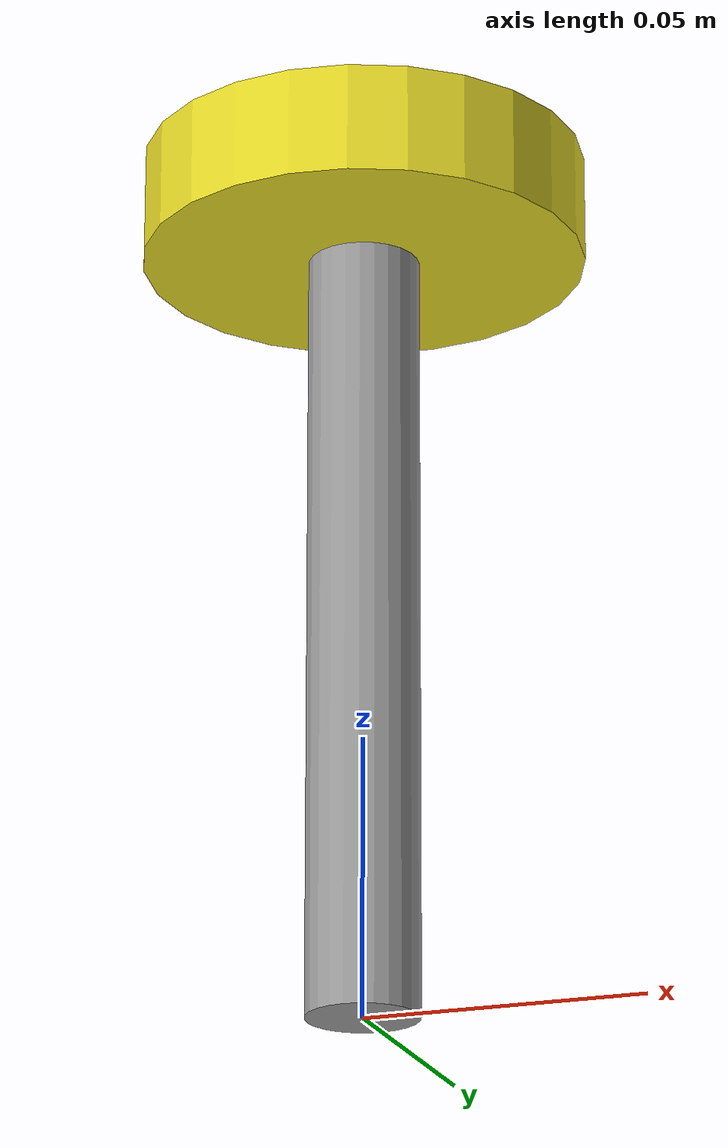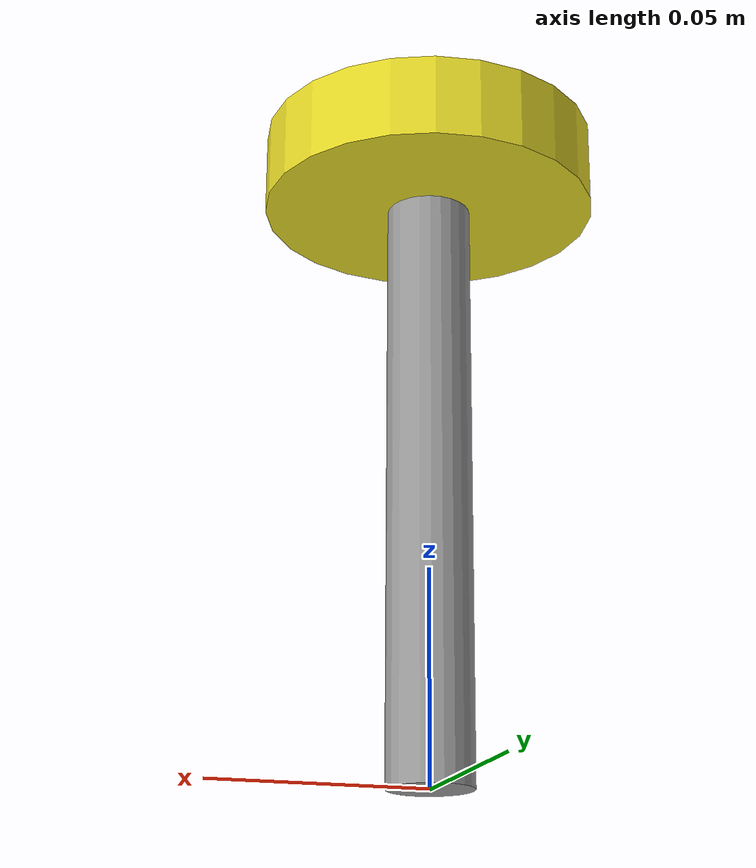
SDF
<?xml version='1.0'?>
<sdf version='1.6'>
  <model name='edge_pillar'>
    <static>true</static>
    <link name='link_0'>
      <pose frame=''>0 0 0.07 0 -0 0</pose>
      <inertial>
        <mass>1</mass>
        <inertia>
          <ixx>0.145833</ixx>
          <ixy>0</ixy>
          <ixz>0</ixz>
          <iyy>0.145833</iyy>
          <iyz>0</iyz>
          <izz>0.125</izz>
        </inertia>
        <pose frame=''>0 0 0 0 -0 0</pose>
      </inertial>
      <gravity>1</gravity>
      <self_collide>0</self_collide>
      <kinematic>0</kinematic>
      <visual name='visual'>
        <pose frame=''>0 0 0 0 -0 0</pose>
        <geometry>
          <cylinder>
            <radius>0.01</radius>
            <length>0.14</length>
          </cylinder>
        </geometry>
        <material>
          <lighting>1</lighting>
          <script>
            <uri>file://media/materials/scripts/gazebo.material</uri>
            <name>Gazebo/Grey</name>
          </script>

          <shader type='vertex'>
            <normal_map>__default__</normal_map>
          </shader>
        </material>
        <cast_shadows>0</cast_shadows>
        <transparency>0</transparency>
      </visual>
      <collision name='collision'>
        <laser_retro>0</laser_retro>
        <max_contacts>10</max_contacts>
        <pose frame=''>0 0 0 0 -0 0</pose>
        <geometry>
          <cylinder>
            <radius>0.01</radius>
            <length>0.14</length>
          </cylinder>
        </geometry>
        <surface>
          <friction>
            <ode>
              <mu>1</mu>
              <mu2>1</mu2>
              <fdir1>0 0 0</fdir1>
              <slip1>0</slip1>
              <slip2>0</slip2>
            </ode>
            <torsional>
              <coefficient>1</coefficient>
              <patch_radius>0</patch_radius>
              <surface_radius>0</surface_radius>
              <use_patch_radius>1</use_patch_radius>
              <ode>
                <slip>0</slip>
              </ode>
            </torsional>
          </friction>
          <bounce>
            <restitution_coefficient>0</restitution_coefficient>
            <threshold>1e+06</threshold>
          </bounce>
          <contact>
            <collide_without_contact>0</collide_without_contact>
            <collide_without_contact_bitmask>1</collide_without_contact_bitmask>
            <collide_bitmask>1</collide_bitmask>
            <ode>
              <soft_cfm>0</soft_cfm>
              <soft_erp>0.2</soft_erp>
              <kp>1e+13</kp>
              <kd>1</kd>
              <max_vel>0.01</max_vel>
              <min_depth>0</min_depth>
            </ode>
            <bullet>
              <split_impulse>1</split_impulse>
              <split_impulse_penetration_threshold>-0.01</split_impulse_penetration_threshold>
              <soft_cfm>0</soft_cfm>
              <soft_erp>0.2</soft_erp>
              <kp>1e+13</kp>
              <kd>1</kd>
            </bullet>
          </contact>
        </surface>
      </collision>
    </link>
    <link name='link_1'>
      <pose frame=''>0 0 0.15 0 -0 0</pose>
      <inertial>
        <mass>1</mass>
        <inertia>
          <ixx>0.145833</ixx>
          <ixy>0</ixy>
          <ixz>0</ixz>
          <iyy>0.145833</iyy>
          <iyz>0</iyz>
          <izz>0.125</izz>
        </inertia>
        <pose frame=''>0 0 0 0 -0 0</pose>
      </inertial>
      <gravity>1</gravity>
      <self_collide>0</self_collide>
      <kinematic>0</kinematic>
      <visual name='visual'>
        <pose frame=''>0 0 0 0 -0 0</pose>
        <geometry>
          <cylinder>
            <radius>0.04</radius>
            <length>0.02</length>
          </cylinder>
        </geometry>
        <material>
          <lighting>1</lighting>
          <script>
            <uri>file://media/materials/scripts/gazebo.material</uri>
            <name>Gazebo/DarkYellow</name>
          </script>
          <shader type='vertex'>
            <normal_map>__default__</normal_map>
          </shader>
        </material>
        <cast_shadows>0</cast_shadows>
        <transparency>0</transparency>
      </visual>
      <collision name='collision'>
        <laser_retro>0</laser_retro>
        <max_contacts>10</max_contacts>
        <pose frame=''>0 0 0 0 -0 0</pose>
        <geometry>
          <cylinder>
            <radius>0.04</radius>
            <length>0.02</length>
          </cylinder>
        </geometry>
        <surface>
          <friction>
            <ode>
              <mu>1</mu>
              <mu2>1</mu2>
              <fdir1>0 0 0</fdir1>
              <slip1>0</slip1>
              <slip2>0</slip2>
            </ode>
            <torsional>
              <coefficient>1</coefficient>
              <patch_radius>0</patch_radius>
              <surface_radius>0</surface_radius>
              <use_patch_radius>1</use_patch_radius>
              <ode>
                <slip>0</slip>
              </ode>
            </torsional>
          </friction>
          <bounce>
            <restitution_coefficient>0</restitution_coefficient>
            <threshold>1e+06</threshold>
          </bounce>
          <contact>
            <collide_without_contact>0</collide_without_contact>
            <collide_without_contact_bitmask>1</collide_without_contact_bitmask>
            <collide_bitmask>1</collide_bitmask>
            <ode>
              <soft_cfm>0</soft_cfm>
              <soft_erp>0.2</soft_erp>
              <kp>1e+13</kp>
              <kd>1</kd>
              <max_vel>0.01</max_vel>
              <min_depth>0</min_depth>
            </ode>
            <bullet>
              <split_impulse>1</split_impulse>
              <split_impulse_penetration_threshold>-0.01</split_impulse_penetration_threshold>
              <soft_cfm>0</soft_cfm>
              <soft_erp>0.2</soft_erp>
              <kp>1e+13</kp>
              <kd>1</kd>
            </bullet>
          </contact>
        </surface>
      </collision>
    </link>
    <static>0</static>
    <allow_auto_disable>1</allow_auto_disable>
  </model>
</sdf>
